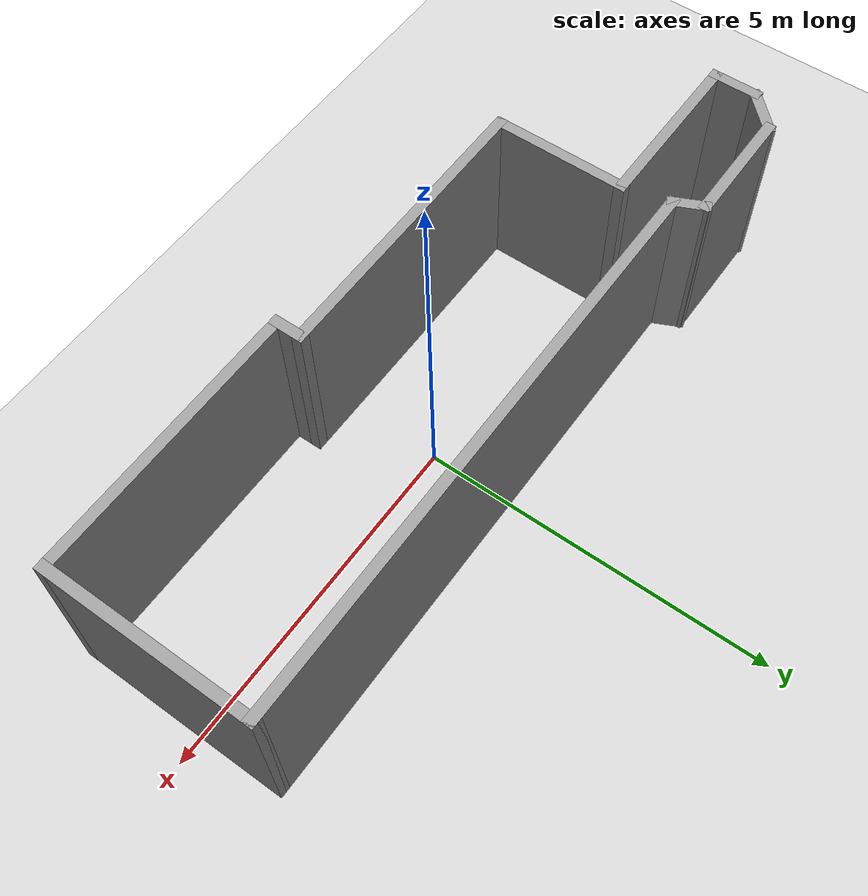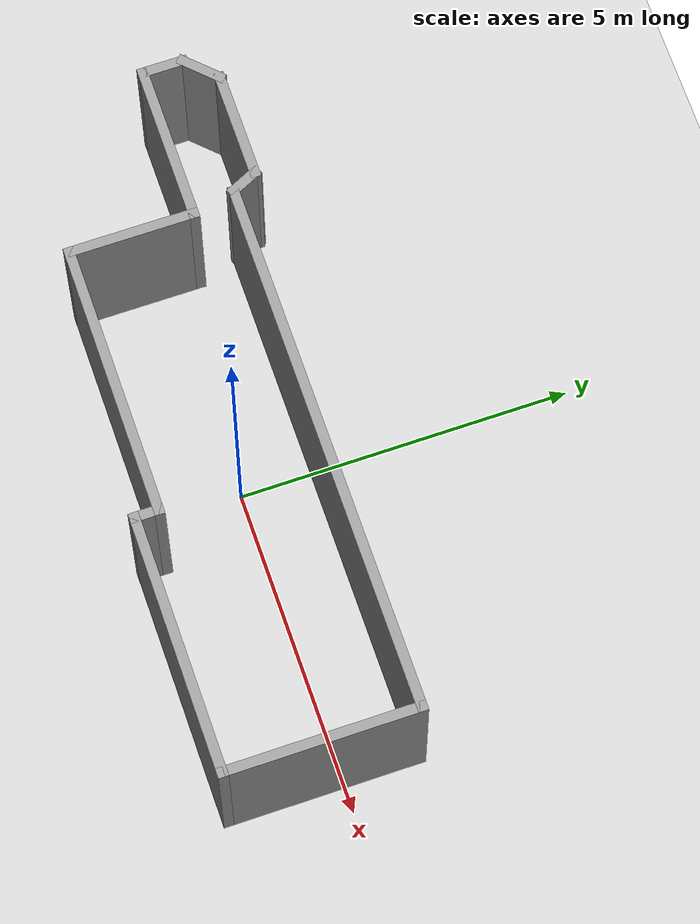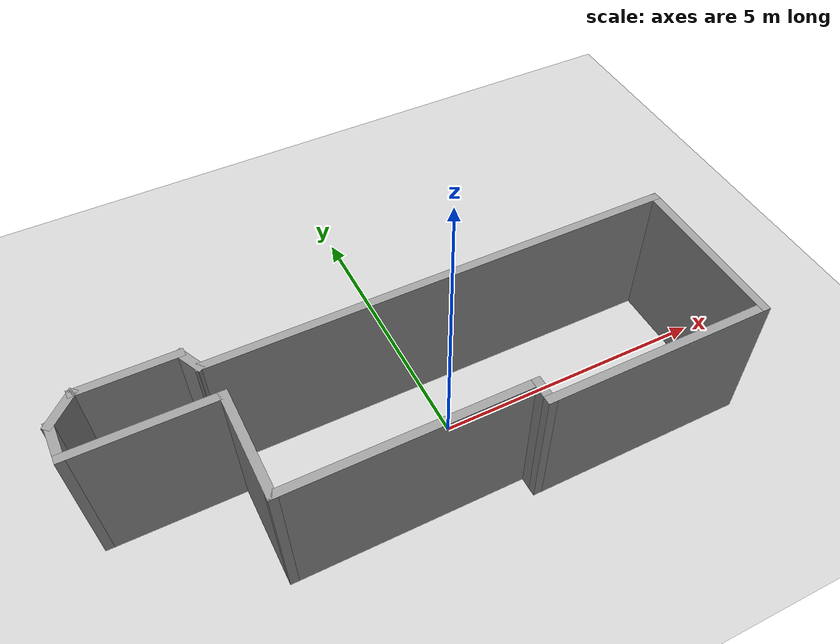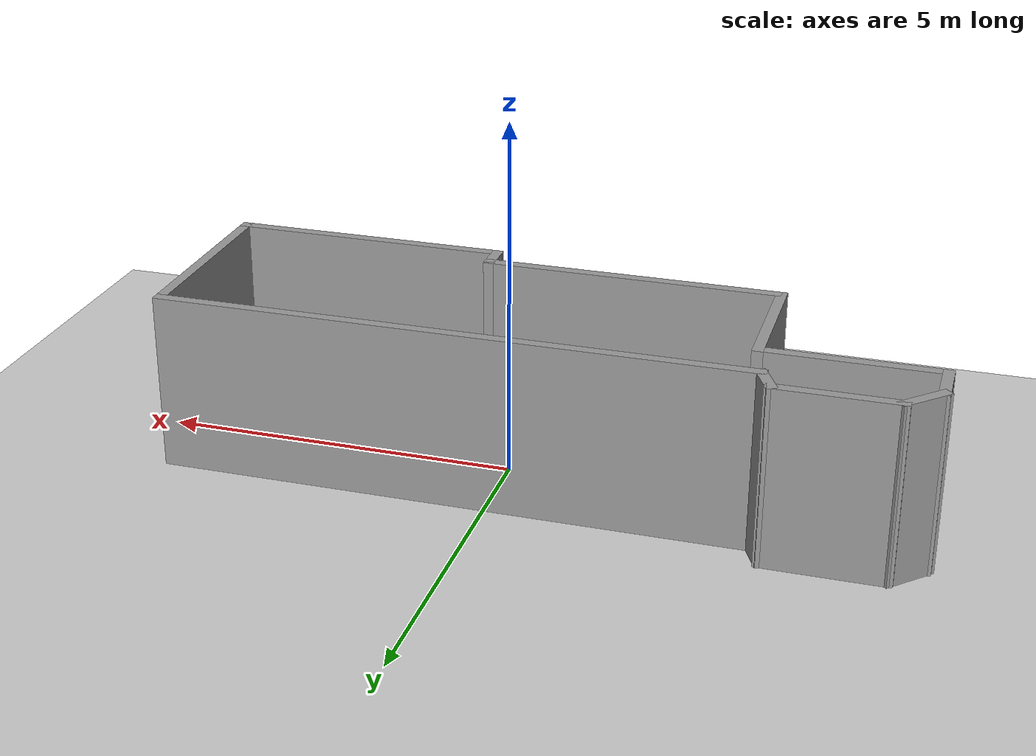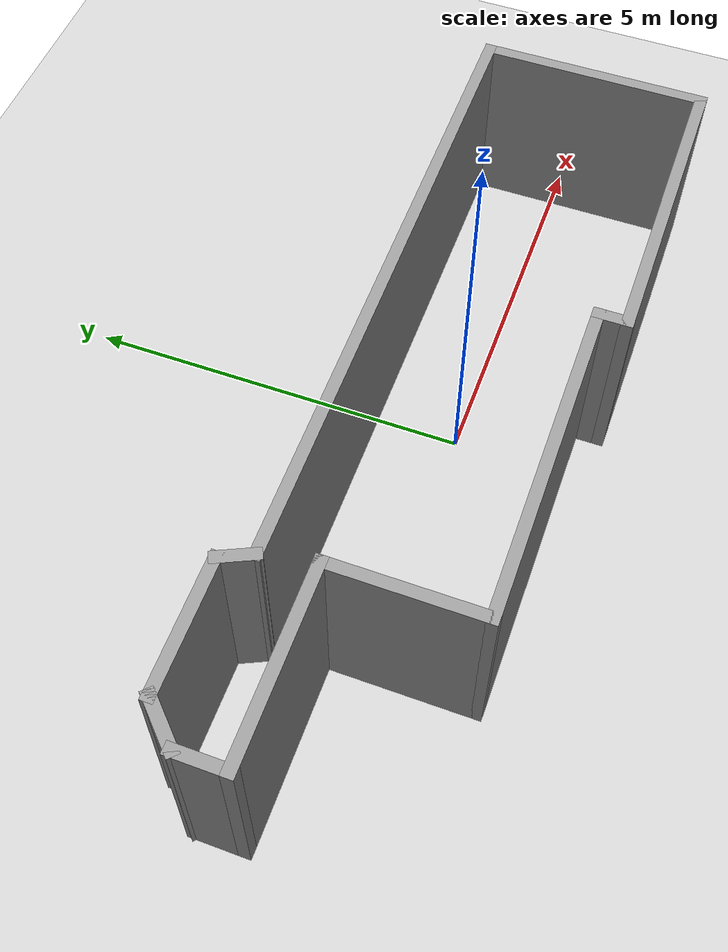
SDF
<sdf version="1.7">
 <world name="default">
  <light name="sun" type="directional">
   <pose>0 0 10 0 -0 0</pose>
   <diffuse>0.8 0.8 0.8 1</diffuse>
   <specular>0.2 0.2 0.2 1</specular>
   <attenuation>
    <range>1000</range>
    <constant>0.9</constant>
    <linear>0.01</linear>
    <quadratic>0.001</quadratic>
   </attenuation>
   <direction>-0.5 0.1 -0.9</direction>
   <spot><inner_angle>0</inner_angle><outer_angle>0</outer_angle><falloff>0</falloff></spot>
  </light>
  <model name="ground_plane">
   <static>1</static>
   <link name="link">
    <collision name="collision">
     <geometry><plane><normal>0 0 1</normal><size>100 100</size></plane></geometry>
     <surface><friction><ode><mu>100</mu><mu2>50</mu2></ode></friction></surface>
    </collision>
    <visual name="visual">
     <cast_shadows>0</cast_shadows>
     <geometry><plane><normal>0 0 1</normal><size>100 100</size></plane></geometry>
     <material>
      <script><uri>file://media/materials/scripts/gazebo.material</uri><name>Gazebo/Grey</name></script>
     </material>
    </visual>
   </link>
  </model>
  <gravity>0 0 -9.8</gravity>
  <magnetic_field>6e-06 2.3e-05 -4.2e-05</magnetic_field>
  <atmosphere type="adiabatic"/>
  <physics type="ode">
   <max_step_size>0.001</max_step_size>
   <real_time_factor>1</real_time_factor>
   <real_time_update_rate>1000</real_time_update_rate>
  </physics>
  <scene><ambient>0.4 0.4 0.4 1</ambient><background>0.7 0.7 0.7 1</background><shadows>1</shadows></scene>
  <audio><device>default</device></audio>
  <spherical_coordinates>
   <surface_model>EARTH_WGS84</surface_model>
   <latitude_deg>0</latitude_deg>
   <longitude_deg>0</longitude_deg>
   <elevation>0</elevation>
   <heading_deg>0</heading_deg>
  </spherical_coordinates>
  <model name="kantlo">
   <pose>-0.620701 0.23777 0 0 -0 0</pose>
   <link name="Wall_0">
    <collision name="Wall_0_Collision">
     <geometry><box><size>8.25 0.15 2.5</size></box></geometry>
     <pose>0 0 1.25 0 -0 0</pose>
    </collision>
    <visual name="Wall_0_Visual">
     <pose>0 0 1.25 0 -0 0</pose>
     <geometry><box><size>8.25 0.15 2.5</size></box></geometry>
     <material>
      <script><uri>file://media/materials/scripts/gazebo.material</uri><name>Gazebo/Grey</name></script>
      <ambient>1 1 1 1</ambient>
     </material>
     <meta><layer>0</layer></meta>
    </visual>
    <pose>1.11553 0.8975 0 0 -0 0</pose>
   </link>
   <link name="Wall_1">
    <collision name="Wall_1_Collision">
     <geometry><box><size>3 0.15 2.5</size></box></geometry>
     <pose>0 0 1.25 0 -0 0</pose>
    </collision>
    <visual name="Wall_1_Visual">
     <pose>0 0 1.25 0 -0 0</pose>
     <geometry><box><size>3 0.15 2.5</size></box></geometry>
     <material>
      <script><uri>file://media/materials/scripts/gazebo.material</uri><name>Gazebo/Grey</name></script>
      <ambient>1 1 1 1</ambient>
     </material>
     <meta><layer>0</layer></meta>
    </visual>
    <pose>5.16553 -0.5275 0 0 -0 -1.5708</pose>
   </link>
   <link name="Wall_10">
    <collision name="Wall_10_Collision">
     <geometry><box><size>0.563469 0.15 2.5</size></box></geometry>
     <pose>0 0 1.25 0 -0 0</pose>
    </collision>
    <visual name="Wall_10_Visual">
     <pose>0 0 1.25 0 -0 0</pose>
     <geometry><box><size>0.563469 0.15 2.5</size></box></geometry>
     <material>
      <script><uri>file://media/materials/scripts/gazebo.material</uri><name>Gazebo/Grey</name></script>
      <ambient>1 1 1 1</ambient>
     </material>
     <meta><layer>0</layer></meta>
    </visual>
    <pose>-3.02233 1.08463 0 0 -0 -1.1318</pose>
   </link>
   <link name="Wall_2">
    <collision name="Wall_2_Collision">
     <geometry><box><size>4 0.15 2.5</size></box></geometry>
     <pose>0 0 1.25 0 -0 0</pose>
    </collision>
    <visual name="Wall_2_Visual">
     <pose>0 0 1.25 0 -0 0</pose>
     <geometry><box><size>4 0.15 2.5</size></box></geometry>
     <material>
      <script><uri>file://media/materials/scripts/gazebo.material</uri><name>Gazebo/Grey</name></script>
      <ambient>1 1 1 1</ambient>
     </material>
     <meta><layer>0</layer></meta>
    </visual>
    <pose>3.24053 -1.9525 0 0 -0 3.14159</pose>
   </link>
   <link name="Wall_3">
    <collision name="Wall_3_Collision">
     <geometry><box><size>0.5 0.15 2.5</size></box></geometry>
     <pose>0 0 1.25 0 -0 0</pose>
    </collision>
    <visual name="Wall_3_Visual">
     <pose>0 0 1.25 0 -0 0</pose>
     <geometry><box><size>0.5 0.15 2.5</size></box></geometry>
     <material>
      <script><uri>file://media/materials/scripts/gazebo.material</uri><name>Gazebo/Grey</name></script>
      <ambient>1 1 1 1</ambient>
     </material>
     <meta><layer>0</layer></meta>
    </visual>
    <pose>1.31553 -1.7775 0 0 -0 1.5708</pose>
   </link>
   <link name="Wall_4">
    <collision name="Wall_4_Collision">
     <geometry><box><size>4.25 0.15 2.5</size></box></geometry>
     <pose>0 0 1.25 0 -0 0</pose>
    </collision>
    <visual name="Wall_4_Visual">
     <pose>0 0 1.25 0 -0 0</pose>
     <geometry><box><size>4.25 0.15 2.5</size></box></geometry>
     <material>
      <script><uri>file://media/materials/scripts/gazebo.material</uri><name>Gazebo/Grey</name></script>
      <ambient>1 1 1 1</ambient>
     </material>
     <meta><layer>0</layer></meta>
    </visual>
    <pose>-0.734467 -1.6025 0 0 -0 3.14159</pose>
   </link>
   <link name="Wall_5">
    <collision name="Wall_5_Collision">
     <geometry><box><size>2 0.15 2.5</size></box></geometry>
     <pose>0 0 1.25 0 -0 0</pose>
    </collision>
    <visual name="Wall_5_Visual">
     <pose>0 0 1.25 0 -0 0</pose>
     <geometry><box><size>2 0.15 2.5</size></box></geometry>
     <material>
      <script><uri>file://media/materials/scripts/gazebo.material</uri><name>Gazebo/Grey</name></script>
      <ambient>1 1 1 1</ambient>
     </material>
     <meta><layer>0</layer></meta>
    </visual>
    <pose>-2.78447 -0.6775 0 0 -0 1.5708</pose>
   </link>
   <link name="Wall_6">
    <collision name="Wall_6_Collision">
     <geometry><box><size>2.5 0.15 2.5</size></box></geometry>
     <pose>0 0 1.25 0 -0 0</pose>
    </collision>
    <visual name="Wall_6_Visual">
     <pose>0 0 1.25 0 -0 0</pose>
     <geometry><box><size>2.5 0.15 2.5</size></box></geometry>
     <material>
      <script><uri>file://media/materials/scripts/gazebo.material</uri><name>Gazebo/Grey</name></script>
      <ambient>1 1 1 1</ambient>
     </material>
     <meta><layer>0</layer></meta>
    </visual>
    <pose>-3.95947 0.2475 0 0 -0 3.14159</pose>
   </link>
   <link name="Wall_7">
    <collision name="Wall_7_Collision">
     <geometry><box><size>0.75 0.15 2.5</size></box></geometry>
     <pose>0 0 1.25 0 -0 0</pose>
    </collision>
    <visual name="Wall_7_Visual">
     <pose>0 0 1.25 0 -0 0</pose>
     <geometry><box><size>0.75 0.15 2.5</size></box></geometry>
     <material>
      <script><uri>file://media/materials/scripts/gazebo.material</uri><name>Gazebo/Grey</name></script>
      <ambient>1 1 1 1</ambient>
     </material>
     <meta><layer>0</layer></meta>
    </visual>
    <pose>-5.13447 0.5475 0 0 -0 1.5708</pose>
   </link>
   <link name="Wall_8">
    <collision name="Wall_8_Collision">
     <geometry><box><size>0.75 0.15 2.5</size></box></geometry>
     <pose>0 0 1.25 0 -0 0</pose>
    </collision>
    <visual name="Wall_8_Visual">
     <pose>0 0 1.25 0 -0 0</pose>
     <geometry><box><size>0.75 0.15 2.5</size></box></geometry>
     <material>
      <script><uri>file://media/materials/scripts/gazebo.material</uri><name>Gazebo/Grey</name></script>
      <ambient>1 1 1 1</ambient>
     </material>
     <meta><layer>0</layer></meta>
    </visual>
    <pose>-4.92234 1.05963 0 0 -0 0.785398</pose>
   </link>
   <link name="Wall_9">
    <collision name="Wall_9_Collision">
     <geometry><box><size>1.75 0.15 2.5</size></box></geometry>
     <pose>0 0 1.25 0 -0 0</pose>
    </collision>
    <visual name="Wall_9_Visual">
     <pose>0 0 1.25 0 -0 0</pose>
     <geometry><box><size>1.75 0.15 2.5</size></box></geometry>
     <material>
      <script><uri>file://media/materials/scripts/gazebo.material</uri><name>Gazebo/Grey</name></script>
      <ambient>1 1 1 1</ambient>
     </material>
     <meta><layer>0</layer></meta>
    </visual>
    <pose>-3.9102 1.27176 0 0 -0 0</pose>
   </link>
   <static>1</static>
  </model>
 </world>
</sdf>
